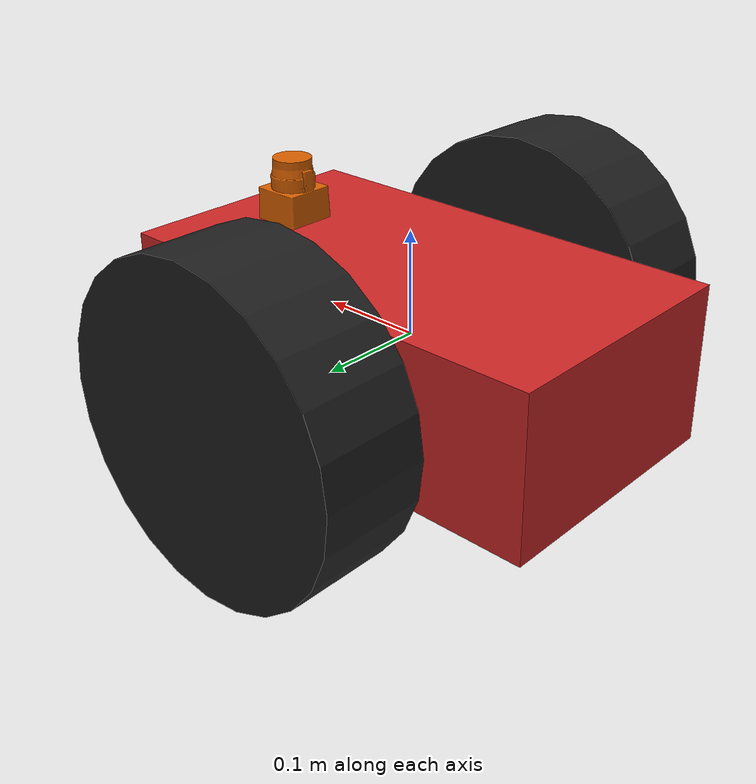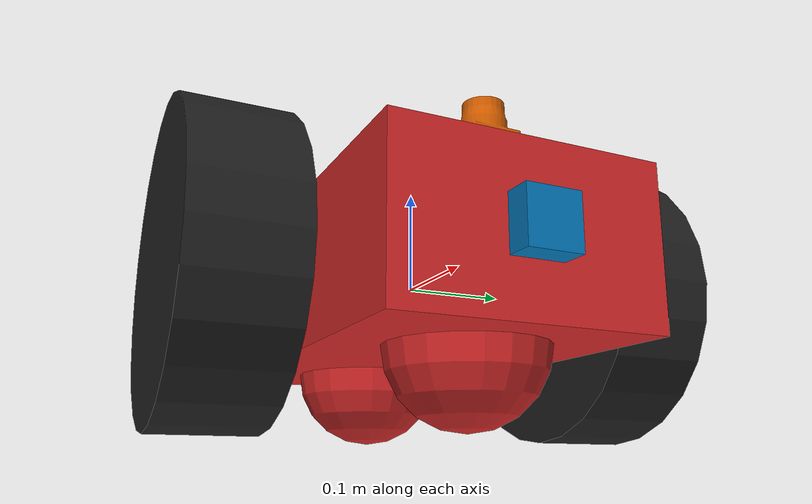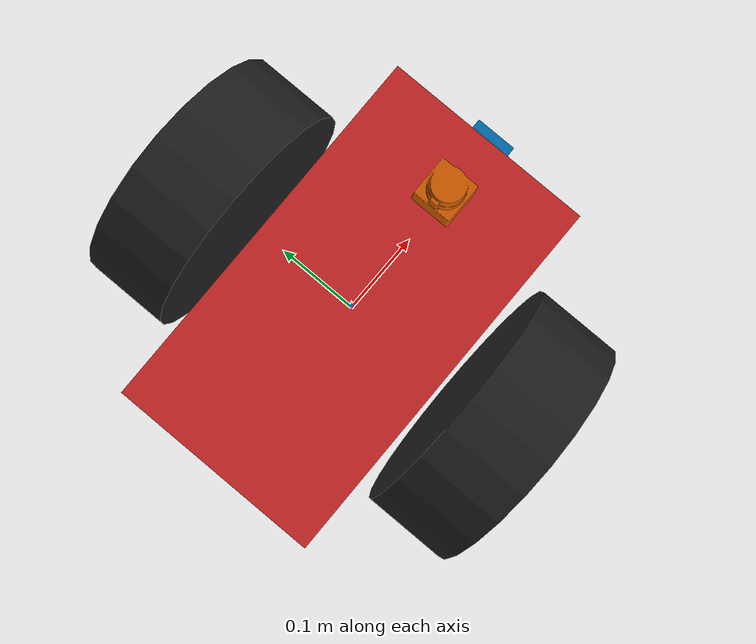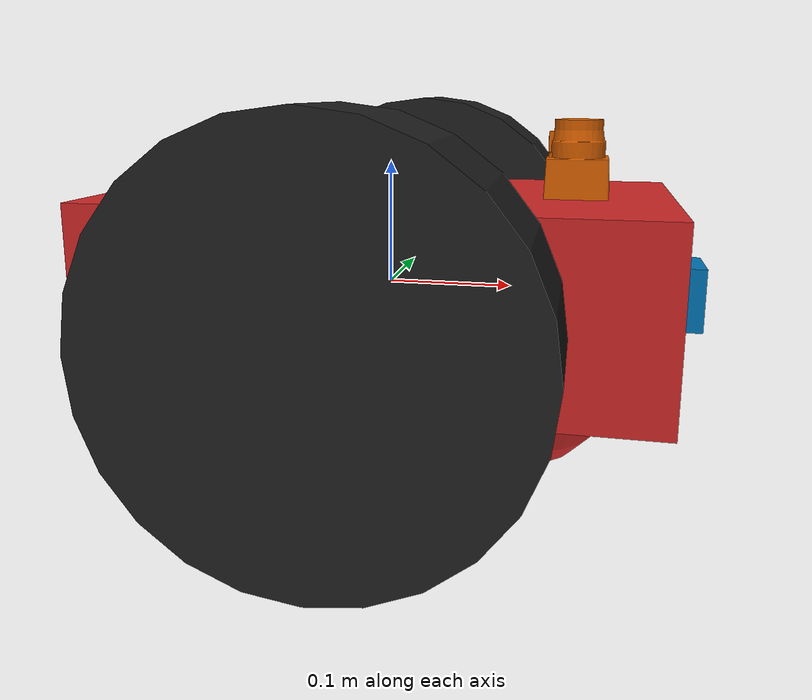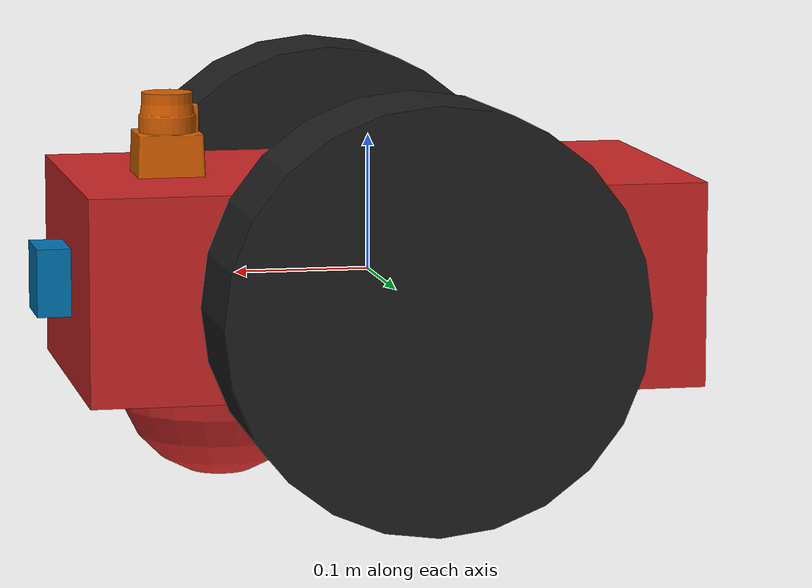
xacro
<?xml version='1.0'?>

<robot name="my_robot" xmlns:xacro="http://www.ros.org/wiki/xacro">

  <xacro:include filename="$(find my_robot)/urdf/my_robot.gazebo" />

  <material name="blue">
    <color rgba="0 0 0.8 1"/>
  </material>

  <material name="black">
    <color rgba="0 0 0 0"/>
  </material>

  <material name="red">
    <color rgba="0.8 0 0 1"/>
  </material>

  <link name="robot_footprint"></link>

  <joint name="robot_footprint_joint" type="fixed">
    <origin xyz="0 0 0" rpy="0 0 0" />
    <parent link="robot_footprint"/>
    <child link="chassis" />
  </joint>

  <link name='chassis'>
    <pose>0 0 0.1 0 0 0</pose>

    <inertial>
      <mass value="15.0"/>
      <origin xyz="0.0 0 0" rpy=" 0 0 0"/>
      <inertia
          ixx="0.1" ixy="0" ixz="0"
          iyy="0.1" iyz="0"
          izz="0.1"
      />
    </inertial>

    <collision name='collision'>
      <origin xyz="0 0 0" rpy=" 0 0 0"/>
      <geometry>
        <box size=".45 .25 .15"/>
      </geometry>
    </collision>

    <visual name='chassis_visual'>
      <origin xyz="0 0 0" rpy=" 0 0 0"/>
      <geometry>
        <box size=".45 .25 .15"/>
      </geometry>
    </visual>

    <collision name='back_caster_collision'>
      <origin xyz="-0.1125 0 -0.075" rpy=" 0 0 0"/>
      <geometry>
        <sphere radius="0.0744"/>
      </geometry>
    </collision>

    <visual name='back_caster_visual'>
      <origin xyz="-0.1125 0 -0.075" rpy=" 0 0 0"/>
      <geometry>
        <sphere radius="0.075"/>
      </geometry>
    </visual>

    <collision name='front_caster_collision'>
      <origin xyz="0.1125 0 -0.075" rpy=" 0 0 0"/>
      <geometry>
        <sphere radius="0.0744"/>
      </geometry>
    </collision>

    <visual name='front_caster_visual'>
      <origin xyz="0.1125 0 -0.075" rpy=" 0 0 0"/>
      <geometry>
        <sphere radius="0.075"/>
      </geometry>
    </visual>

  </link>

  <gazebo reference="chassis">
    <material>Gazebo/Red</material>
  </gazebo>

  <link name="left_wheel">

    <collision name='left_wheel'>
      <origin xyz="0 0 0" rpy=" 0 1.5707 1.5707"/>
      <geometry>
        <cylinder radius="0.15" length="0.1"/>
      </geometry>
    </collision>

    <inertial>
      <mass value="5"/>
      <origin xyz="0 0 0" rpy=" 0 1.5707 1.5707"/>
      <inertia
          ixx="0.1" ixy="0" ixz="0"
          iyy="0.1" iyz="0"
          izz="0.1"
      />
    </inertial>

    <visual name='left_wheel_visual'>
      <origin xyz="0 0 0" rpy=" 0 1.5707 1.5707"/>
      <geometry>
        <cylinder radius="0.15" length="0.1"/>
      </geometry>
    </visual>

  </link>

  <link name="right_wheel">

    <collision name='right_wheel'>
      <origin xyz="0 0 0" rpy=" 0 1.5707 1.5707"/>
      <geometry>
        <cylinder radius="0.15" length="0.1"/>
      </geometry>
    </collision>

    <inertial>
      <mass value="5"/>
      <origin xyz="0 0 0" rpy=" 0 1.5707 1.5707"/>
      <inertia
          ixx="0.1" ixy="0" ixz="0"
          iyy="0.1" iyz="0"
          izz="0.1"
      />
    </inertial>

    <visual name='right_wheel_visual'>
      <origin xyz="0 0 0" rpy=" 0 1.5707 1.5707"/>
      <geometry>
        <cylinder radius="0.15" length="0.1"/>
      </geometry>
    </visual>
  </link>

  <gazebo reference="left_wheel">
    <material>Gazebo/Black</material>
  </gazebo>
  <gazebo reference="right_wheel">
    <material>Gazebo/Black</material>
  </gazebo>

  <joint type="continuous" name="left_wheel_hinge">
    <origin xyz="0 0.2 0" rpy="0 0 0"/>
    <child link="left_wheel"/>
    <parent link="chassis"/>
    <axis xyz="0 1 0" rpy="0 0 0"/>
    <limit effort="10000" velocity="1000"/>
    <dynamics damping="1.0" friction="1.0"/>
  </joint>

  <joint type="continuous" name="right_wheel_hinge">
    <origin xyz="0 -0.2 0" rpy="0 0 0"/>
    <child link="right_wheel"/>
    <parent link="chassis"/>
    <axis xyz="0 1 0" rpy="0 0 0"/>
    <limit effort="10000" velocity="1000"/>
    <dynamics damping="1.0" friction="1.0"/>
  </joint>

  <link name="camera">

    <collison name="camera">
      <origin xyz="0 0 0" rpy="0 0 0"/>
      <geometry>
        <box size="0.05 0.05 0.05"/>
      </geometry>
    </collison>

    <inertial>
      <mass value="0.1"/>
      <origin xyz="0 0 0" rpy="0 0 0"/>
      <inertia
          ixx="1e-6" ixy="0" ixz="0"
          iyy="1e-6" iyz="0"
          izz="1e-6"
      />
    </inertial>

    <visual name="camera">
      <origin xyz="0 0 0" rpy="0 0 0"/>
      <geometry>
        <box size="0.05 0.05 0.05"/>
      </geometry>
    </visual>

    <box_inertia sizeX="0.05" sizeY="0.05" sizeZ="0.05" mass="0.1">
      <origin xyz="0 0 0" rpy="0 0 0" />
    </box_inertia>

  </link>

  <joint type="fixed" name="camera_joint">
    <origin xyz="0.225 0 0" rpy="0 0 0"/>
    <child link="camera"/>
    <parent link="chassis"/>
    <axis xyz="0 1 0"/>
  </joint>

  <link name="hokuyo">

    <collison name="hokuyo">
      <origin xyz="0 0 0" rpy="0 0 0"/>
      <geometry>
        <box size="0.1 0.1 0.1"/>
      </geometry>
    </collison>

    <inertial>
      <mass value="1e-5"/>
      <origin xyz="0 0 0" rpy="0 0 0"/>
      <inertia
          ixx="1e-6" ixy="0" ixz="0"
          iyy="1e-6" iyz="0"
          izz="1e-6"
      />
    </inertial>

    <visual name="hokuyo">
      <origin xyz="0 0 0" rpy="0 0 0"/>
      <geometry>
        <mesh filename = "package://my_robot/meshes/hokuyo.dae"/>
      </geometry>
    </visual>

  </link>

  <joint type="fixed" name="hokuyo_joint">
    <origin xyz="0.15 0 0.1" rpy="0 0 0"/>
    <child link="hokuyo"/>
    <parent link="chassis"/>
    <axis xyz="0 1 0"/>
  </joint>

  <joint name="camera_optical_joint" type="fixed">
    <origin xyz="0 0 0" rpy="-1.5707 0 -1.5707"/>
    <parent link="camera"/>
    <child link="camera_link_optical"/>
  </joint>

  <link name="camera_link_optical">
  </link>

</robot>
